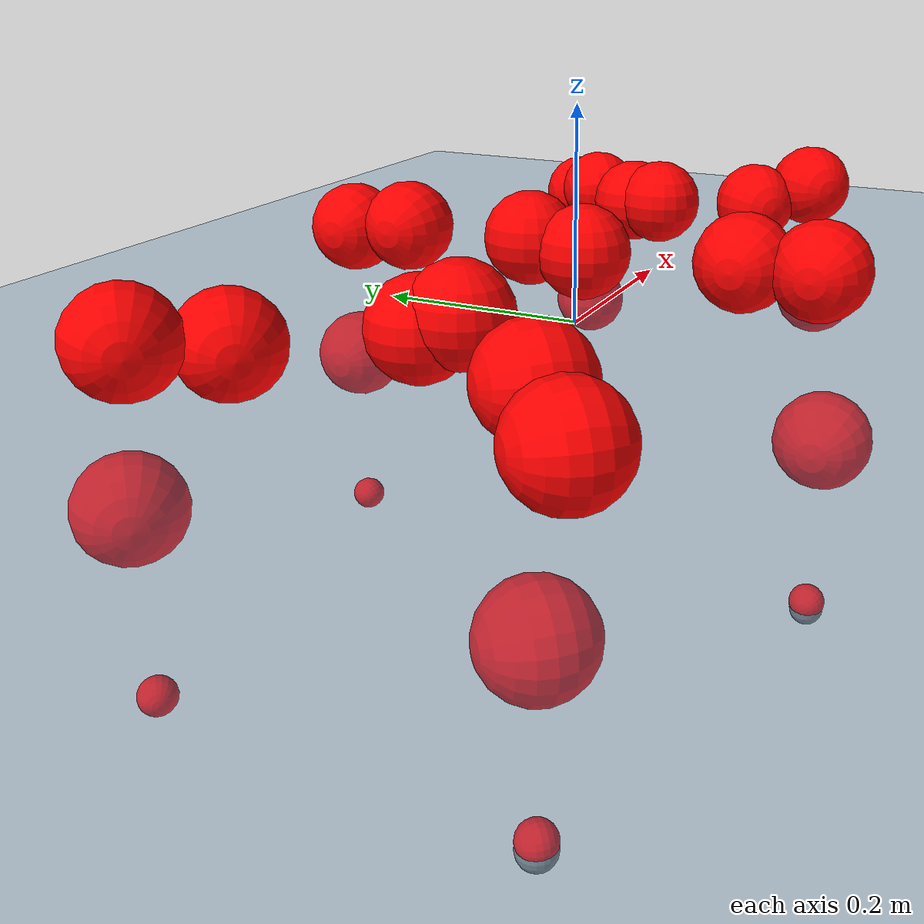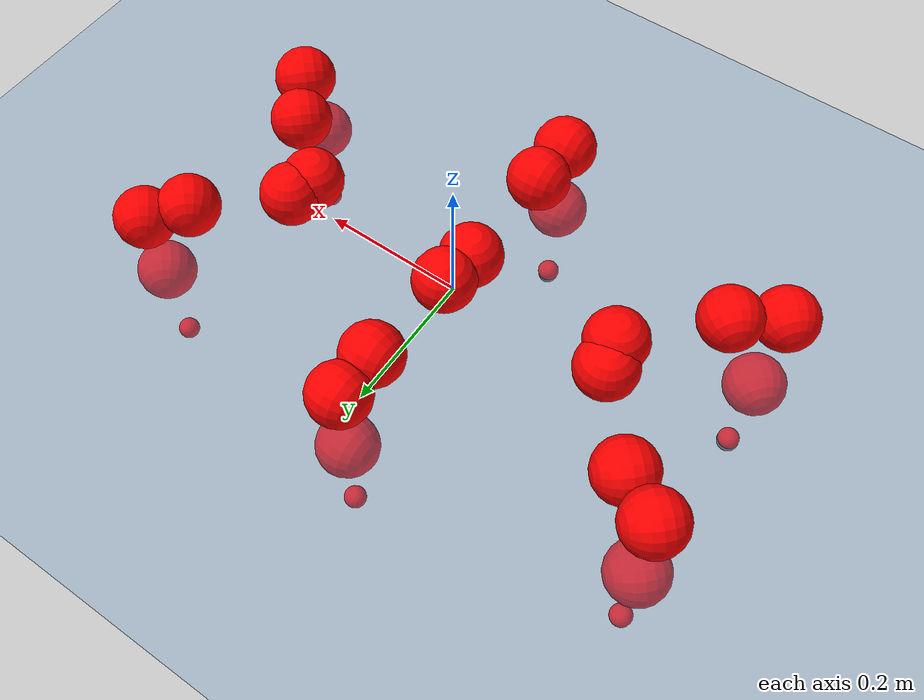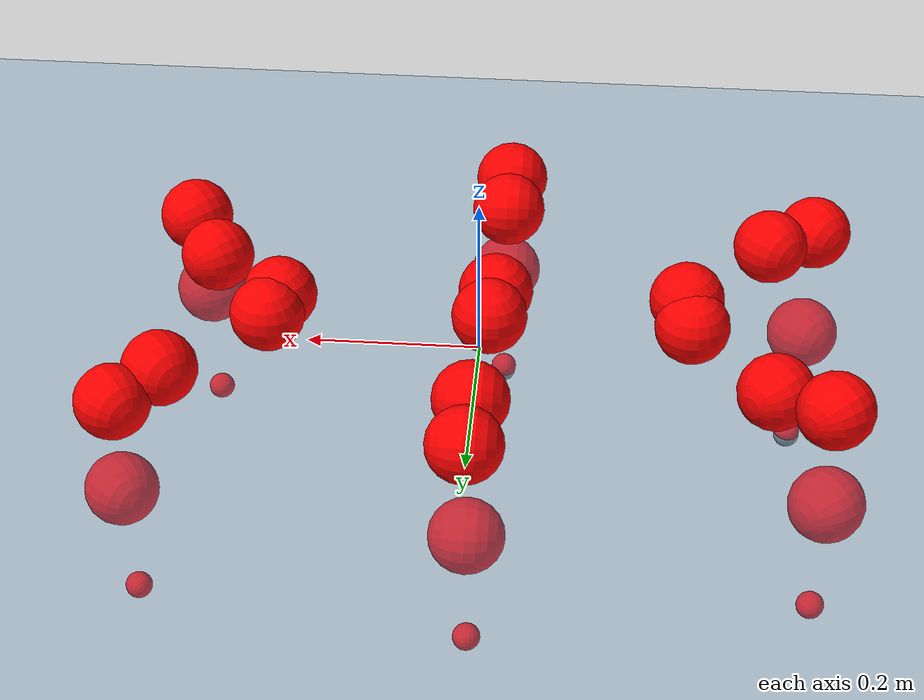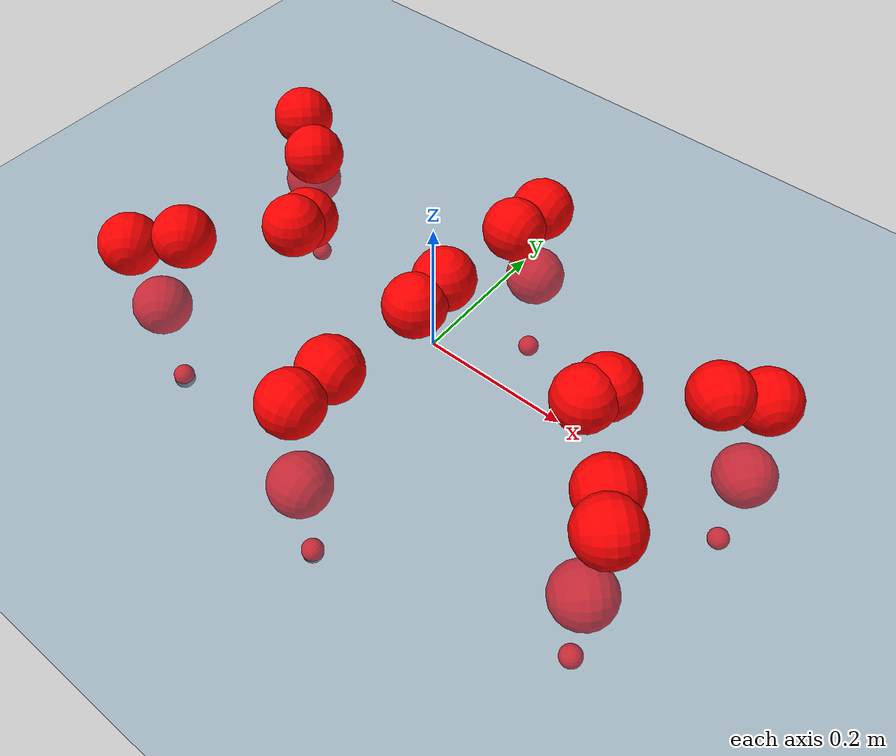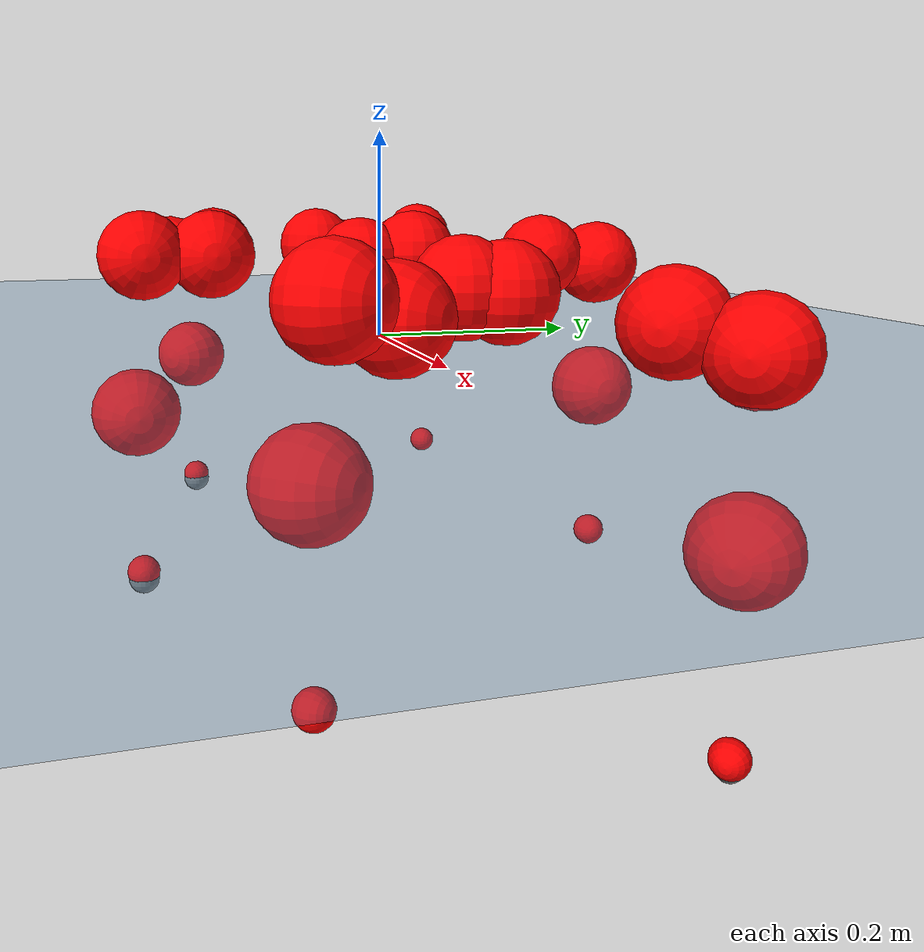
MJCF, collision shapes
<mujoco model="Golem">
  <compiler angle="radian" assetdir="assets" balanceinertia="true" inertiafromgeom="false"/>

  <option timestep="0.005" density="1.2" viscosity="2e-05"/>

  <size nkey="1"/>

  <visual>
    <quality shadowsize="8192"/>
    <map shadowclip="0.5"/>
  </visual>

  <default>
    <default class="/">
      <joint armature="0.01" damping="0.01" frictionloss="0.01"/>
      <geom contype="0" conaffinity="0" group="1" solref="-1000 -80"/>
      <site size="0.01 0.005 0.005" group="5"/>
      <general forcelimited="true" biastype="affine" gainprm="25" biasprm="0 -25 -0.5"/>
      <default class="visual">
        <geom type="mesh" group="2"/>
      </default>
      <default class="collision">
        <geom group="3"/>
      </default>
      <default class="foot">
        <geom size="0.01 0 0" condim="6" group="4" priority="1" solimp="0.015 1 0.01"/>
      </default>
      <default class="reward_collision_sphere">
        <geom group="5" rgba="1 0 0 1"/>
      </default>
    </default>
  </default>

  <asset>
    <texture type="skybox" colorspace="auto" name="//unnamed_texture_0" builtin="gradient" rgb1="0.95 0.95 0.95" rgb2="0.95 0.95 0.95" width="100" height="600"/>
    <texture type="2d" colorspace="auto" name="texplane" builtin="checker" rgb1="0.345 0.575 0.748" rgb2="0.345 0.575 0.748" markrgb="1 1 1" width="512" height="512"/>
    <material name="MatPlane" class="/" texture="texplane" texuniform="true" texrepeat="2 2" specular="0.9"/>
    <mesh name="body" class="/" file="body.stl" scale="0.001 0.001 0.001"/>
    <mesh name="coxa" class="/" file="coxa.stl" scale="0.001 0.001 0.001"/>
    <mesh name="femur" class="/" file="femur.stl" scale="0.001 0.001 0.001"/>
    <mesh name="tibia" class="/" file="tibia.stl" scale="0.001 0.001 0.001"/>
    <mesh name="tarsus" class="/" file="tarsus.stl" scale="0.001 0.001 0.001"/>
  </asset>

  <worldbody>
    <geom name="floor" class="/" size="100 100 0.125" type="plane" group="0" material="MatPlane"/>
    <light name="toplight_shadow" class="/" pos="0 0 5" dir="0.0990148 0.0990148 -0.990148" type="directional" ambient="0.04 0.04 0.04" diffuse="0.55 0.55 0.55" specular="0.12 0.12 0.12"/>
    <light name="toplight_fill" class="/" pos="0 0 5" dir="0.0990148 0.0990148 -0.990148" type="directional" castshadow="false" ambient="0.04 0.04 0.04" diffuse="0.3 0.3 0.3" specular="0.08 0.08 0.08"/>
    <body name="trunk" pos="-0.000372 0.00500058 0.0115037" quat="0.999977 0.00628529 -0.00247502 0.000161568">
      <inertial pos="-0.00855561 0.00855825 -0.0118035" quat="0.999303 0.000748408 -0.0022043 -0.0372609" mass="5.94712" diaginertia="0.0935812 0.000971597 0.0151644"/>
      <joint name="//unnamed_joint_0" type="free"/>
      <geom name="//unnamed_geom_1" class="/" pos="0 0 0.0697621" quat="1 0 0 0" type="mesh" rgba="0.9 0.9 0.9 1" mesh="body"/>
      <site name="imu" class="/" pos="0.229403 -0.0694816 0.0248083" size="0.0106739"/>
      <camera name="track" class="/" pos="0 -1.19928 0" quat="0.707107 0.707107 0 0" mode="trackcom"/>
      <camera name="ego_camera" class="/" pos="0.196626 0 0.109003" quat="-0.5 -0.5 0.5 0.5"/>
      <body name="coxa_RR" pos="-0.266631 -0.0464525 0.0682816" quat="0.377398 -0.00647316 -0.000420384 -0.926028">
        <inertial pos="-0.0126742 -0.00721879 0.0103984" quat="0.999011 0.000987465 -0.0216085 0.0388548" mass="0.215975" diaginertia="0.0931654 0.000682076 0.012978"/>
        <joint name="coxa_joint_RR" class="/" pos="0 0 0" axis="-0.0365064 0.0194493 -0.999144" range="-3.31484 3.28204" armature="0.00876398" damping="0.0360833" frictionloss="0.00634244"/>
        <geom name="//unnamed_geom_2" class="/" type="mesh" rgba="0.2 0.2 0.2 1" mesh="coxa"/>
        <geom name="//unnamed_geom_3" class="reward_collision_sphere" size="0.0426958" pos="-0.0453753 0 0"/>
        <body name="femur_RR" pos="0.100621 0.00878989 -0.000678687" quat="0.502434 -0.493389 0.500871 0.503246">
          <inertial pos="0.000663383 -0.0166021 -0.0100912" quat="0.998405 0.00440641 0.0558835 -0.00664917" mass="0.276136" diaginertia="0.0809517 0.00102336 0.0181352"/>
          <joint name="femur_joint_RR" class="/" pos="0 0 0" axis="0.00893555 0.0221916 -0.999714" range="-3.28837 3.28905" armature="0.00378581" damping="0" frictionloss="0.0110052"/>
          <geom name="//unnamed_geom_4" class="/" type="mesh" rgba="0.9 0.9 0.9 1" mesh="femur"/>
          <geom name="//unnamed_geom_5" class="reward_collision_sphere" size="0.0426958"/>
          <body name="tibia_RR" pos="0.0111913 -0.0732373 -0.0040033" quat="0.000620677 0.999999 0.000202314 0.00106492">
            <inertial pos="0.000633529 -0.0155663 -0.00536639" quat="0.999995 0.00109835 0.00119253 0.00271712" mass="0.288893" diaginertia="0.0945096 0.000914897 0.018543"/>
            <joint name="tibia_joint_RR" class="/" pos="0 0 0" axis="-0.0164463 0.0739402 0.997127" stiffness="0.0607104" range="-3.45261 3.02362" armature="0.0167767" damping="0.0516486" frictionloss="0.00134487"/>
            <geom name="//unnamed_geom_6" class="/" type="mesh" rgba="0.2 0.2 0.2 1" mesh="tibia"/>
            <geom name="//unnamed_geom_7" class="reward_collision_sphere" size="0.0426958"/>
            <body name="tarsus_RR" pos="0.137607 -0.0128839 0.015165" quat="0.999987 -0.00372022 -0.00341582 0.000313679">
              <inertial pos="0.0817005 0.00559354 -0.0122011" quat="0.495964 0.461287 0.518907 0.521507" mass="0.290475" diaginertia="0.0877689 0.000996415 0.0142555"/>
              <joint name="tarsus_joint_RR" class="/" pos="0 0 0" axis="-0.0568698 -0.00803743 0.998349" range="-2.93207 3.21116" armature="0.0151434" damping="0" frictionloss="0.00835051"/>
              <geom name="//unnamed_geom_8" class="/" type="mesh" rgba="0.9 0.9 0.9 1" mesh="tarsus"/>
              <geom name="foot_1" class="foot" size="0.0161521" pos="0.169401 0 0" quat="0 -0.707107 0 0.707107"/>
              <geom name="//unnamed_geom_10" class="reward_collision_sphere" size="0.0426958"/>
              <geom name="//unnamed_geom_11" class="reward_collision_sphere" size="0.0160109" pos="0.162595 0 0"/>
              <site name="foot_1" class="foot" pos="0.169401 0 0" quat="0 -0.707107 0 0.707107" size="0.0106739"/>
            </body>
          </body>
        </body>
      </body>
      <body name="coxa_RM" pos="-0.0171285 -0.0646615 0.0632937" quat="0.707754 -0.00290023 0.000277981 -0.706453">
        <inertial pos="-0.00318606 -0.000140433 0.0140595" quat="0.996478 0.0754248 0.0359826 0.00687241" mass="0.215015" diaginertia="0.0601171 0.000490317 0.0101638"/>
        <joint name="coxa_joint_RM" class="/" pos="0 0 0" axis="-0.0694993 -0.0415899 -0.996715" stiffness="0.0476074" range="-3.14856 3.3404" armature="0.0142144" damping="0" frictionloss="0.00446049"/>
        <geom name="//unnamed_geom_12" class="/" type="mesh" rgba="0.2 0.2 0.2 1" mesh="coxa"/>
        <geom name="//unnamed_geom_13" class="reward_collision_sphere" size="0.0426958" pos="-0.0453753 0 0"/>
        <body name="femur_RM" pos="0.102789 -0.00573639 0.00956841" quat="0.500987 -0.499868 0.498963 0.50018">
          <inertial pos="-0.00185405 -0.0125648 -0.00117318" quat="0.999693 0.0233332 -0.00769985 0.00320629" mass="0.210749" diaginertia="0.0925501 0.00079032 0.017124"/>
          <joint name="femur_joint_RM" class="/" pos="0 0 0" axis="0.0028877 -0.00839175 -0.999961" stiffness="0.0645067" range="-3.41093 2.94466" armature="0.00442218" damping="0.00435662" frictionloss="0.00278035"/>
          <geom name="//unnamed_geom_14" class="/" type="mesh" rgba="0.9 0.9 0.9 1" mesh="femur"/>
          <geom name="//unnamed_geom_15" class="reward_collision_sphere" size="0.0426958"/>
          <body name="tibia_RM" pos="-0.000655866 -0.0653224 -0.000335353" quat="0.00127599 0.999998 0.00145844 -0.000114608">
            <inertial pos="-0.00315363 0.000923945 -0.0130021" quat="0.999617 0.0118097 -0.0125388 -0.0216385" mass="0.197401" diaginertia="0.0819335 0.000789432 0.017392"/>
            <joint name="tibia_joint_RM" class="/" pos="0 0 0" axis="0.0682544 0.0364461 0.997002" range="-3.31281 2.89937" armature="0.0191675" damping="0" frictionloss="0.00240391"/>
            <geom name="//unnamed_geom_16" class="/" type="mesh" rgba="0.2 0.2 0.2 1" mesh="tibia"/>
            <geom name="//unnamed_geom_17" class="reward_collision_sphere" size="0.0426958"/>
            <body name="tarsus_RM" pos="0.150514 0.0140056 -0.00586489" quat="0.999981 -0.000445681 0.00411687 0.0045615">
              <inertial pos="0.0901146 0.00418836 -0.00163445" quat="0.503871 0.493246 0.504058 0.498746" mass="0.164641" diaginertia="0.0662712 0.000623237 0.0124759"/>
              <joint name="tarsus_joint_RM" class="/" pos="0 0 0" axis="0.00355807 -0.0420937 0.999107" range="-3.30078 3.25311" armature="0.0156405" damping="0" frictionloss="0.00742923"/>
              <geom name="//unnamed_geom_18" class="/" type="mesh" rgba="0.9 0.9 0.9 1" mesh="tarsus"/>
              <geom name="foot_2" class="foot" size="0.0150894" pos="0.169401 0 0" quat="0 -0.707107 0 0.707107"/>
              <geom name="//unnamed_geom_20" class="reward_collision_sphere" size="0.0426958"/>
              <geom name="//unnamed_geom_21" class="reward_collision_sphere" size="0.0160109" pos="0.162595 0 0"/>
              <site name="foot_2" class="foot" pos="0.169401 0 0" quat="0 -0.707107 0 0.707107" size="0.0106739"/>
            </body>
          </body>
        </body>
      </body>
      <body name="coxa_RF" pos="0.260592 -0.0341226 0.0566363" quat="0.923709 0.000109377 9.77974e-05 -0.383094">
        <inertial pos="0.0158532 -0.00347478 0.0129184" quat="0.998429 -0.0122464 -0.0392971 0.0380119" mass="0.228226" diaginertia="0.0621769 0.000570392 0.012675"/>
        <joint name="coxa_joint_RF" class="/" pos="0 0 0" axis="-0.00911452 -0.0286523 -0.999548" stiffness="0.0663141" range="-3.20463 3.36543" armature="0.013142" damping="0" frictionloss="0.00269501"/>
        <geom name="//unnamed_geom_22" class="/" type="mesh" rgba="0.2 0.2 0.2 1" mesh="coxa"/>
        <geom name="//unnamed_geom_23" class="reward_collision_sphere" size="0.0426958" pos="-0.0453753 0 0"/>
        <body name="femur_RF" pos="0.0745258 0.00432249 -0.0104685" quat="0.502546 -0.503519 0.49492 0.498969">
          <inertial pos="-0.00468047 -0.00203827 0.00619985" quat="0.998686 0.0244173 0.0392234 0.0221817" mass="0.233358" diaginertia="0.0882974 0.000930385 0.0176694"/>
          <joint name="femur_joint_RF" class="/" pos="0 0 0" axis="-0.0372954 0.0108761 -0.999245" range="-3.32482 3.13191" armature="0.00795127" damping="0.0172329" frictionloss="0.00842926"/>
          <geom name="//unnamed_geom_24" class="/" type="mesh" rgba="0.9 0.9 0.9 1" mesh="femur"/>
          <geom name="//unnamed_geom_25" class="reward_collision_sphere" size="0.0426958"/>
          <body name="tibia_RF" pos="-0.0177069 -0.0609166 -0.0139227" quat="-0.000495531 0.999991 -0.00386705 -0.00136026">
            <inertial pos="-0.000432882 0.0152714 0.0134358" quat="0.997265 0.0189972 0.0664486 0.0262056" mass="0.262781" diaginertia="0.105869 0.00101081 0.0148791"/>
            <joint name="tibia_joint_RF" class="/" pos="0 0 0" axis="-0.0734145 -0.00415245 0.997293" stiffness="0.0851858" range="-2.9459 3.08012" armature="0.00916148" damping="0.0396202" frictionloss="0.0164713"/>
            <geom name="//unnamed_geom_26" class="/" type="mesh" rgba="0.2 0.2 0.2 1" mesh="tibia"/>
            <geom name="//unnamed_geom_27" class="reward_collision_sphere" size="0.0426958"/>
            <body name="tarsus_RF" pos="0.124024 0.00732839 0.0163157" quat="1 0.000117555 0.000132049 -0.000222198">
              <inertial pos="0.0846181 -0.00507866 0.00381913" quat="0.532993 0.49577 0.483047 0.486617" mass="0.261812" diaginertia="0.0987165 0.00101645 0.01617"/>
              <joint name="tarsus_joint_RF" class="/" pos="0 0 0" axis="-0.0344384 0.0769143 0.996443" range="-3.04602 3.25517" armature="0.0151672" damping="0.00805354" frictionloss="0.00506377"/>
              <geom name="//unnamed_geom_28" class="/" type="mesh" rgba="0.9 0.9 0.9 1" mesh="tarsus"/>
              <geom name="foot_3" class="foot" size="0.00685682" pos="0.169401 0 0" quat="0 -0.707107 0 0.707107"/>
              <geom name="//unnamed_geom_30" class="reward_collision_sphere" size="0.0426958"/>
              <geom name="//unnamed_geom_31" class="reward_collision_sphere" size="0.0160109" pos="0.162595 0 0"/>
              <site name="foot_3" class="foot" pos="0.169401 0 0" quat="0 -0.707107 0 0.707107" size="0.0106739"/>
            </body>
          </body>
        </body>
      </body>
      <body name="coxa_LR" pos="-0.272801 0.0488458 0.0539418" quat="0.38737 0.00192871 0.00470071 0.92191">
        <inertial pos="0.0097121 -0.0135243 0.0142479" quat="0.999606 0.00800506 0.0264697 -0.00489891" mass="0.235222" diaginertia="0.0805887 0.000829914 0.0143968"/>
        <joint name="coxa_joint_LR" class="/" pos="0 0 0" axis="0.0372662 -0.0527318 -0.997913" range="-2.95513 2.8373" armature="0.0111544" damping="0" frictionloss="0.00406807"/>
        <geom name="//unnamed_geom_32" class="/" type="mesh" rgba="0.2 0.2 0.2 1" mesh="coxa"/>
        <geom name="//unnamed_geom_33" class="reward_collision_sphere" size="0.0426958" pos="-0.0453753 0 0"/>
        <body name="femur_LR" pos="0.091228 -0.010157 -0.000400066" quat="0.498295 -0.501896 0.497535 0.502257">
          <inertial pos="-0.00383087 -0.0122749 -0.00738938" quat="0.99683 0.0121153 -0.0534914 0.0576432" mass="0.292562" diaginertia="0.0716191 0.000911407 0.0189793"/>
          <joint name="femur_joint_LR" class="/" pos="0 0 0" axis="-0.0685007 0.0574744 0.995994" range="-2.94887 2.97322" armature="0.00217616" damping="0" frictionloss="0.00966445"/>
          <geom name="//unnamed_geom_34" class="/" type="mesh" rgba="0.9 0.9 0.9 1" mesh="femur"/>
          <geom name="//unnamed_geom_35" class="reward_collision_sphere" size="0.0426958"/>
          <body name="tibia_LR" pos="-0.0138045 -0.0713833 0.0127349" quat="-0.00292602 0.999992 -0.000766899 0.00250005">
            <inertial pos="0.00993918 -0.00776998 -0.013301" quat="0.998178 0.0211254 0.014722 0.0545598" mass="0.183107" diaginertia="0.06811 0.000633786 0.015769"/>
            <joint name="tibia_joint_LR" class="/" pos="0 0 0" axis="-0.00970752 -0.0117246 -0.999884" range="-3.45873 2.88974" armature="0.0184429" damping="0" frictionloss="0.0105291"/>
            <geom name="//unnamed_geom_36" class="/" type="mesh" rgba="0.2 0.2 0.2 1" mesh="tibia"/>
            <geom name="//unnamed_geom_37" class="reward_collision_sphere" size="0.0426958"/>
            <body name="tarsus_LR" pos="0.128094 0.0101511 0.00450414" quat="1 0.000184409 7.65118e-05 -2.88842e-05">
              <inertial pos="0.0934428 0.0145145 -0.00547941" quat="0.501486 0.499538 0.500822 0.498147" mass="0.317228" diaginertia="0.0860633 0.000664541 0.0147125"/>
              <joint name="tarsus_joint_LR" class="/" pos="0 0 0" axis="0.00222801 0.00276112 -0.999994" range="-3.02533 2.91813" armature="0.0111256" damping="0.046186" frictionloss="0.0164614"/>
              <geom name="//unnamed_geom_38" class="/" type="mesh" rgba="0.9 0.9 0.9 1" mesh="tarsus"/>
              <geom name="foot_4" class="foot" size="0.00632448" pos="0.169401 0 0" quat="0.707107 0 -0.707107 0"/>
              <geom name="//unnamed_geom_40" class="reward_collision_sphere" size="0.0426958"/>
              <geom name="//unnamed_geom_41" class="reward_collision_sphere" size="0.0160109" pos="0.162595 0 0"/>
              <site name="foot_4" class="foot" pos="0.169401 0 0" quat="0.707107 0 -0.707107 0" size="0.0106739"/>
            </body>
          </body>
        </body>
      </body>
      <body name="coxa_LM" pos="-0.0136205 0.0801943 0.0686113" quat="0.707514 -0.00295604 0.00125472 0.706692">
        <inertial pos="0.000792157 -0.00246392 0.0156956" quat="0.999646 -0.000823466 0.0262 0.00464932" mass="0.246188" diaginertia="0.0639868 0.000720674 0.0141497"/>
        <joint name="coxa_joint_LM" class="/" pos="0 0 0" axis="-0.029938 -0.0421076 -0.998664" range="-3.03551 3.18159" armature="0.00622215" damping="0.0704139" frictionloss="0.0107948"/>
        <geom name="//unnamed_geom_42" class="/" type="mesh" rgba="0.2 0.2 0.2 1" mesh="coxa"/>
        <geom name="//unnamed_geom_43" class="reward_collision_sphere" size="0.0426958" pos="-0.0453753 0 0"/>
        <body name="femur_LM" pos="0.0902249 -0.0102086 -0.00590203" quat="0.500103 -0.499484 0.499315 0.501097">
          <inertial pos="0.0125473 0.00148398 0.0171681" quat="0.997971 -0.0635468 0.00194692 0.00330386" mass="0.253979" diaginertia="0.0876968 0.000818245 0.0166808"/>
          <joint name="femur_joint_LM" class="/" pos="0 0 0" axis="0.0187666 0.0479667 0.998673" range="-3.26798 3.47419" armature="0.0160098" damping="0.00604851" frictionloss="0.0181138"/>
          <geom name="//unnamed_geom_44" class="/" type="mesh" rgba="0.9 0.9 0.9 1" mesh="femur"/>
          <geom name="//unnamed_geom_45" class="reward_collision_sphere" size="0.0426958"/>
          <body name="tibia_LM" pos="0.00795339 -0.0632465 -0.00163133" quat="-0.00104549 0.999988 -0.00462409 0.00128047">
            <inertial pos="-0.00908427 -0.00135363 0.000601216" quat="0.999677 -0.00183508 0.0206174 -0.0147727" mass="0.257812" diaginertia="0.0961822 0.000954308 0.0189072"/>
            <joint name="tibia_joint_LM" class="/" pos="0 0 0" axis="0.0127322 0.0684355 -0.997574" range="-3.41202 3.33942" armature="0.00165622" damping="0.0417676" frictionloss="0.00346611"/>
            <geom name="//unnamed_geom_46" class="/" type="mesh" rgba="0.2 0.2 0.2 1" mesh="tibia"/>
            <geom name="//unnamed_geom_47" class="reward_collision_sphere" size="0.0426958"/>
            <body name="tarsus_LM" pos="0.132881 3.27674e-05 -0.00213328" quat="1 5.91272e-05 -0.000263147 0.000105593">
              <inertial pos="0.100043 0.00713751 -0.00131758" quat="0.467144 0.48619 0.5115 0.532694" mass="0.303157" diaginertia="0.104407 0.00115417 0.02061"/>
              <joint name="tarsus_joint_LM" class="/" pos="0 0 0" axis="-0.0485587 -0.0231256 -0.998553" range="-3.13597 3.14329" armature="0.0142344" damping="0" frictionloss="0.00181715"/>
              <geom name="//unnamed_geom_48" class="/" type="mesh" rgba="0.9 0.9 0.9 1" mesh="tarsus"/>
              <geom name="foot_5" class="foot" size="0.00644724" pos="0.169401 0 0" quat="0.707107 0 -0.707107 0"/>
              <geom name="//unnamed_geom_50" class="reward_collision_sphere" size="0.0426958"/>
              <geom name="//unnamed_geom_51" class="reward_collision_sphere" size="0.0160109" pos="0.162595 0 0"/>
              <site name="foot_5" class="foot" pos="0.169401 0 0" quat="0.707107 0 -0.707107 0" size="0.0106739"/>
            </body>
          </body>
        </body>
      </body>
      <body name="coxa_LF" pos="0.270233 0.0635304 0.0524796" quat="0.923796 -0.00248924 0.00277898 0.382867">
        <inertial pos="0.0155343 0.0172732 0.0120521" quat="0.999372 0.00303825 -0.000163677 0.0353047" mass="0.290118" diaginertia="0.092718 0.00109744 0.0150337"/>
        <joint name="coxa_joint_LF" class="/" pos="0 0 0" axis="0.0124266 -0.0767423 -0.996974" stiffness="0.0114293" range="-2.9294 3.15278" armature="0.00710201" damping="0" frictionloss="0.0175336"/>
        <geom name="//unnamed_geom_52" class="/" type="mesh" rgba="0.2 0.2 0.2 1" mesh="coxa"/>
        <geom name="//unnamed_geom_53" class="reward_collision_sphere" size="0.0426958" pos="-0.0453753 0 0"/>
        <body name="femur_LF" pos="0.0915788 -0.0149936 -0.0144711" quat="0.501353 -0.499663 0.503761 0.495184">
          <inertial pos="0.000121377 0.0107819 -0.007341" quat="0.999998 -0.000668118 -0.00197429 0.00074649" mass="0.26111" diaginertia="0.11235 0.000913137 0.0183167"/>
          <joint name="femur_joint_LF" class="/" pos="0 0 0" axis="0.064574 -0.0397208 0.997122" range="-2.9498 2.87658" armature="0.00751772" damping="0.00247958" frictionloss="0.0116662"/>
          <geom name="//unnamed_geom_54" class="/" type="mesh" rgba="0.9 0.9 0.9 1" mesh="femur"/>
          <geom name="//unnamed_geom_55" class="reward_collision_sphere" size="0.0426958"/>
          <body name="tibia_LF" pos="0.0161933 -0.0615873 -0.00173153" quat="-0.00161049 0.999987 0.00464754 0.00128585">
            <inertial pos="-0.0110905 -0.0149772 0.0100738" quat="0.999868 0.00399206 0.00450178 -0.0150911" mass="0.225643" diaginertia="0.0982016 0.000861417 0.0188627"/>
            <joint name="tibia_joint_LF" class="/" pos="0 0 0" axis="-0.0395908 0.0421742 -0.998326" stiffness="0.0762845" range="-3.20415 3.40304" armature="0.0145685" damping="0.056652" frictionloss="0.00703883"/>
            <geom name="//unnamed_geom_56" class="/" type="mesh" rgba="0.2 0.2 0.2 1" mesh="tibia"/>
            <geom name="//unnamed_geom_57" class="reward_collision_sphere" size="0.0426958"/>
            <body name="tarsus_LF" pos="0.142721 0.000350836 0.0130036" quat="1 -4.56834e-05 0.000461656 0.000511135">
              <inertial pos="0.108284 -0.00611104 0.00678972" quat="0.483297 0.447045 0.568285 0.493585" mass="0.270355" diaginertia="0.0761615 0.000779544 0.0161984"/>
              <joint name="tarsus_joint_LF" class="/" pos="0 0 0" axis="0.00579299 -0.0894731 -0.995972" range="-3.33218 3.38528" armature="0.0114028" damping="0.0706967" frictionloss="0.0156579"/>
              <geom name="//unnamed_geom_58" class="/" type="mesh" rgba="0.9 0.9 0.9 1" mesh="tarsus"/>
              <geom name="foot_6" class="foot" size="0.0114193" pos="0.169401 0 0" quat="0.707107 0 -0.707107 0"/>
              <geom name="//unnamed_geom_60" class="reward_collision_sphere" size="0.0426958"/>
              <geom name="//unnamed_geom_61" class="reward_collision_sphere" size="0.0160109" pos="0.162595 0 0"/>
              <site name="foot_6" class="foot" pos="0.169401 0 0" quat="0.707107 0 -0.707107 0" size="0.0106739"/>
            </body>
          </body>
        </body>
      </body>
    </body>
  </worldbody>

  <contact>
    <pair class="/" geom1="floor" geom2="foot_1" name="//unnamed_contact_0"/>
    <pair class="/" geom1="floor" geom2="foot_2" name="//unnamed_contact_1"/>
    <pair class="/" geom1="floor" geom2="foot_3" name="//unnamed_contact_2"/>
    <pair class="/" geom1="floor" geom2="foot_4" name="//unnamed_contact_3"/>
    <pair class="/" geom1="floor" geom2="foot_5" name="//unnamed_contact_4"/>
    <pair class="/" geom1="floor" geom2="foot_6" name="//unnamed_contact_5"/>
  </contact>

  <actuator>
    <general name="coxa_joint_RR" class="/" joint="coxa_joint_RR" forcerange="-7.7378 7.7378" gainprm="24.5434" biasprm="0 -24.5434 -0.425817"/>
    <general name="femur_joint_RR" class="/" joint="femur_joint_RR" forcerange="-5.82742 5.82742" gainprm="24.5434" biasprm="0 -24.5434 -0.425817"/>
    <general name="tibia_joint_RR" class="/" joint="tibia_joint_RR" forcerange="-8.0184 8.0184" gainprm="24.5434" biasprm="0 -24.5434 -0.425817"/>
    <general name="tarsus_joint_RR" class="/" joint="tarsus_joint_RR" forcerange="-3.84483 3.84483" gainprm="24.5434" biasprm="0 -24.5434 -0.425817"/>
    <general name="coxa_joint_RM" class="/" joint="coxa_joint_RM" forcerange="-10.2438 10.2438" gainprm="24.5434" biasprm="0 -24.5434 -0.425817"/>
    <general name="femur_joint_RM" class="/" joint="femur_joint_RM" forcerange="-3.81386 3.81386" gainprm="24.5434" biasprm="0 -24.5434 -0.425817"/>
    <general name="tibia_joint_RM" class="/" joint="tibia_joint_RM" forcerange="-5.7278 5.7278" gainprm="24.5434" biasprm="0 -24.5434 -0.425817"/>
    <general name="tarsus_joint_RM" class="/" joint="tarsus_joint_RM" forcerange="-5.21554 5.21554" gainprm="24.5434" biasprm="0 -24.5434 -0.425817"/>
    <general name="coxa_joint_RF" class="/" joint="coxa_joint_RF" forcerange="-11.7294 11.7294" gainprm="24.5434" biasprm="0 -24.5434 -0.425817"/>
    <general name="femur_joint_RF" class="/" joint="femur_joint_RF" forcerange="-6.46538 6.46538" gainprm="24.5434" biasprm="0 -24.5434 -0.425817"/>
    <general name="tibia_joint_RF" class="/" joint="tibia_joint_RF" forcerange="-5.50167 5.50167" gainprm="24.5434" biasprm="0 -24.5434 -0.425817"/>
    <general name="tarsus_joint_RF" class="/" joint="tarsus_joint_RF" forcerange="-6.34669 6.34669" gainprm="24.5434" biasprm="0 -24.5434 -0.425817"/>
    <general name="coxa_joint_LR" class="/" joint="coxa_joint_LR" forcerange="-7.48403 7.48403" gainprm="24.5434" biasprm="0 -24.5434 -0.425817"/>
    <general name="femur_joint_LR" class="/" joint="femur_joint_LR" forcerange="-7.65993 7.65993" gainprm="24.5434" biasprm="0 -24.5434 -0.425817"/>
    <general name="tibia_joint_LR" class="/" joint="tibia_joint_LR" forcerange="-8.89029 8.89029" gainprm="24.5434" biasprm="0 -24.5434 -0.425817"/>
    <general name="tarsus_joint_LR" class="/" joint="tarsus_joint_LR" forcerange="-7.01469 7.01469" gainprm="24.5434" biasprm="0 -24.5434 -0.425817"/>
    <general name="coxa_joint_LM" class="/" joint="coxa_joint_LM" forcerange="-9.49772 9.49772" gainprm="24.5434" biasprm="0 -24.5434 -0.425817"/>
    <general name="femur_joint_LM" class="/" joint="femur_joint_LM" forcerange="-9.37108 9.37108" gainprm="24.5434" biasprm="0 -24.5434 -0.425817"/>
    <general name="tibia_joint_LM" class="/" joint="tibia_joint_LM" forcerange="-7.98608 7.98608" gainprm="24.5434" biasprm="0 -24.5434 -0.425817"/>
    <general name="tarsus_joint_LM" class="/" joint="tarsus_joint_LM" forcerange="-5.28515 5.28515" gainprm="24.5434" biasprm="0 -24.5434 -0.425817"/>
    <general name="coxa_joint_LF" class="/" joint="coxa_joint_LF" forcerange="-10.7284 10.7284" gainprm="24.5434" biasprm="0 -24.5434 -0.425817"/>
    <general name="femur_joint_LF" class="/" joint="femur_joint_LF" forcerange="-7.81662 7.81662" gainprm="24.5434" biasprm="0 -24.5434 -0.425817"/>
    <general name="tibia_joint_LF" class="/" joint="tibia_joint_LF" forcerange="-7.55763 7.55763" gainprm="24.5434" biasprm="0 -24.5434 -0.425817"/>
    <general name="tarsus_joint_LF" class="/" joint="tarsus_joint_LF" forcerange="-7.69924 7.69924" gainprm="24.5434" biasprm="0 -24.5434 -0.425817"/>
  </actuator>

  <sensor>
    <gyro site="imu" name="imu_angular_velocity"/>
    <velocimeter site="imu" name="imu_linear_velocity"/>
    <framelinvel objtype="site" objname="foot_1" name="foot_1_global_linear_velocity"/>
    <framelinvel objtype="site" objname="foot_2" name="foot_2_global_linear_velocity"/>
    <framelinvel objtype="site" objname="foot_3" name="foot_3_global_linear_velocity"/>
    <framelinvel objtype="site" objname="foot_4" name="foot_4_global_linear_velocity"/>
    <framelinvel objtype="site" objname="foot_5" name="foot_5_global_linear_velocity"/>
    <framelinvel objtype="site" objname="foot_6" name="foot_6_global_linear_velocity"/>
  </sensor>

  <keyframe>
    <key name="home" qpos="0 0 0.1457 1 0 0 0 0 0 0 0 0 0 0 0 0 0 0 0 0 0 0 0 0 0 0 0 0 0 0 0"/>
  </keyframe>
</mujoco>
